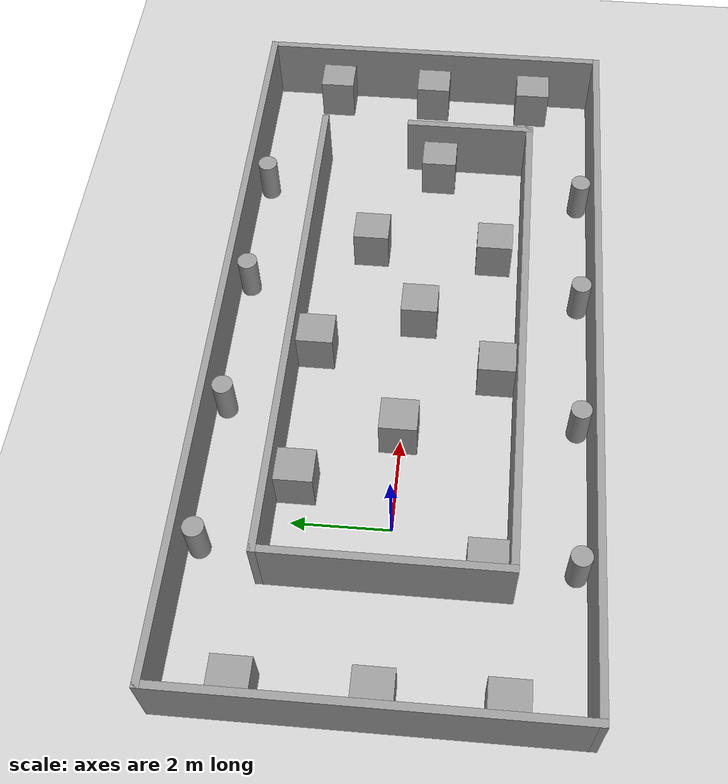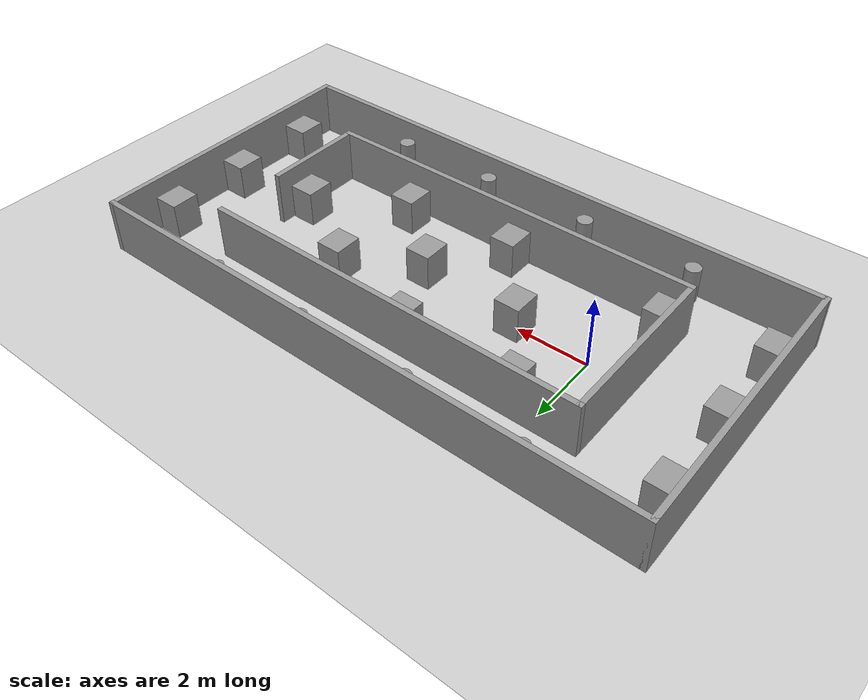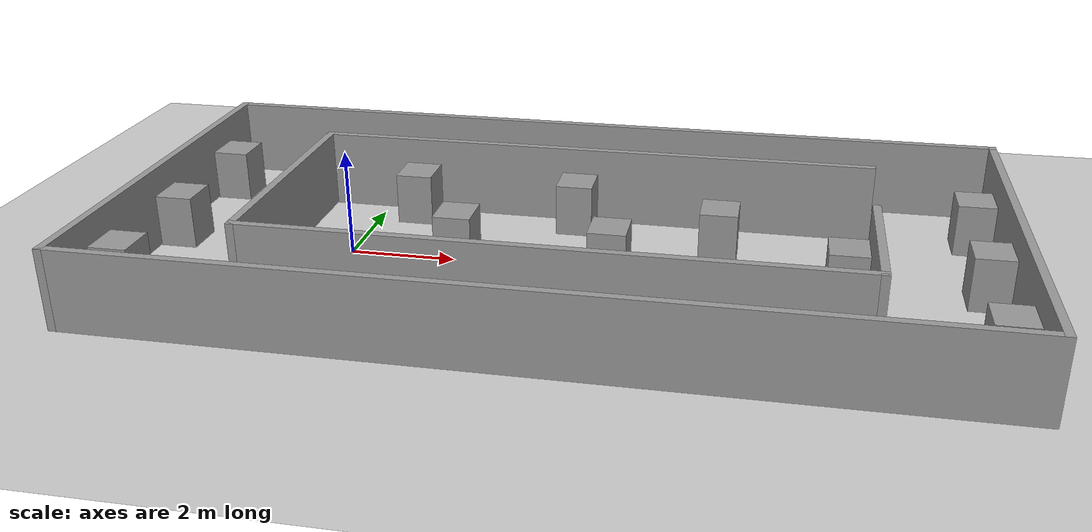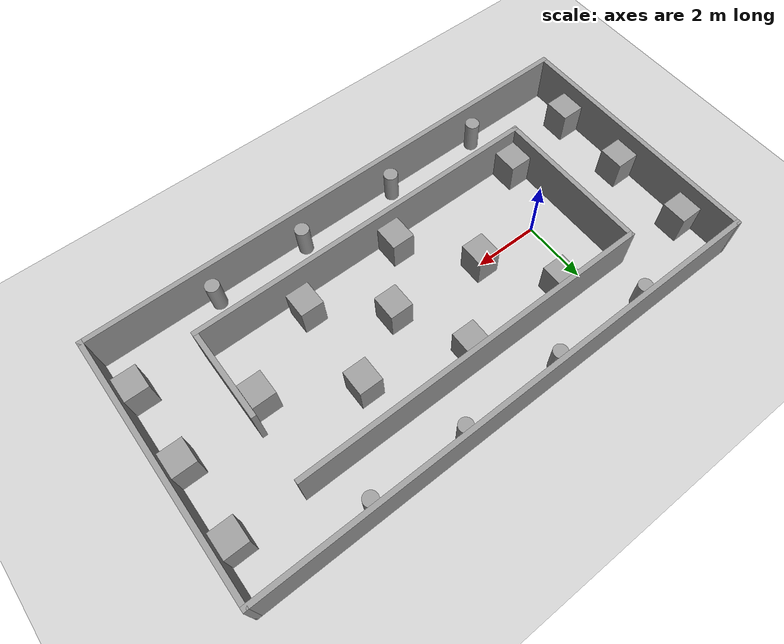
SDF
<sdf version="1.7">
 <world name="default">
  <light name="sun" type="directional">
   <pose>0 0 10 0 -0 0</pose>
   <diffuse>0.8 0.8 0.8 1</diffuse>
   <specular>0.2 0.2 0.2 1</specular>
   <attenuation>
    <range>1000</range>
    <constant>0.9</constant>
    <linear>0.01</linear>
    <quadratic>0.001</quadratic>
   </attenuation>
   <direction>-0.5 0.1 -0.9</direction>
   <spot><inner_angle>0</inner_angle><outer_angle>0</outer_angle><falloff>0</falloff></spot>
  </light>
  <model name="ground_plane">
   <static>1</static>
   <link name="link">
    <collision name="collision">
     <geometry><plane><normal>0 0 1</normal><size>100 100</size></plane></geometry>
     <surface><friction><ode><mu>100</mu><mu2>50</mu2></ode></friction></surface>
    </collision>
    <visual name="visual">
     <cast_shadows>0</cast_shadows>
     <geometry><plane><normal>0 0 1</normal><size>100 100</size></plane></geometry>
     <material>
      <script><uri>file://media/materials/scripts/gazebo.material</uri><name>Gazebo/Grey</name></script>
     </material>
    </visual>
   </link>
  </model>
  <gravity>0 0 -9.8</gravity>
  <magnetic_field>6e-06 2.3e-05 -4.2e-05</magnetic_field>
  <atmosphere type="adiabatic"/>
  <physics type="ode">
   <max_step_size>0.001</max_step_size>
   <real_time_factor>1</real_time_factor>
   <real_time_update_rate>1000</real_time_update_rate>
  </physics>
  <scene><ambient>0.4 0.4 0.4 1</ambient><background>0.7 0.7 0.7 1</background><shadows>1</shadows></scene>
  <spherical_coordinates>
   <surface_model>EARTH_WGS84</surface_model>
   <latitude_deg>0</latitude_deg>
   <longitude_deg>0</longitude_deg>
   <elevation>0</elevation>
   <heading_deg>0</heading_deg>
  </spherical_coordinates>
  <model name="smallsmall">
   <pose>4.103 0.036 0 0 -0 0</pose>
   <link name="Wall_0">
    <collision name="Wall_0_Collision">
     <geometry><box><size>16 0.15 1.5</size></box></geometry>
     <pose>0 0 0.75 0 -0 0</pose>
    </collision>
    <visual name="Wall_0_Visual">
     <pose>0 0 0.75 0 -0 0</pose>
     <geometry><box><size>16 0.15 1.5</size></box></geometry>
     <material>
      <script><uri>file://media/materials/scripts/gazebo.material</uri><name>Gazebo/Grey</name></script>
      <ambient>1 1 1 1</ambient>
     </material>
     <meta><layer>0</layer></meta>
    </visual>
    <pose>0 3.925 0 0 -0 0</pose>
   </link>
   <link name="Wall_1">
    <collision name="Wall_1_Collision">
     <geometry><box><size>8 0.15 1.5</size></box></geometry>
     <pose>0 0 0.75 0 -0 0</pose>
    </collision>
    <visual name="Wall_1_Visual">
     <pose>0 0 0.75 0 -0 0</pose>
     <geometry><box><size>8 0.15 1.5</size></box></geometry>
     <material>
      <script><uri>file://media/materials/scripts/gazebo.material</uri><name>Gazebo/Grey</name></script>
      <ambient>1 1 1 1</ambient>
     </material>
     <meta><layer>0</layer></meta>
    </visual>
    <pose>7.925 0 0 0 -0 -1.5708</pose>
   </link>
   <link name="Wall_2">
    <collision name="Wall_2_Collision">
     <geometry><box><size>16 0.15 1.5</size></box></geometry>
     <pose>0 0 0.75 0 -0 0</pose>
    </collision>
    <visual name="Wall_2_Visual">
     <pose>0 0 0.75 0 -0 0</pose>
     <geometry><box><size>16 0.15 1.5</size></box></geometry>
     <material>
      <script><uri>file://media/materials/scripts/gazebo.material</uri><name>Gazebo/Grey</name></script>
      <ambient>1 1 1 1</ambient>
     </material>
     <meta><layer>0</layer></meta>
    </visual>
    <pose>0 -3.925 0 0 -0 3.14159</pose>
   </link>
   <link name="Wall_3">
    <collision name="Wall_3_Collision">
     <geometry><box><size>8 0.15 1.5</size></box></geometry>
     <pose>0 0 0.75 0 -0 0</pose>
    </collision>
    <visual name="Wall_3_Visual">
     <pose>0 0 0.75 0 -0 0</pose>
     <geometry><box><size>8 0.15 1.5</size></box></geometry>
     <material>
      <script><uri>file://media/materials/scripts/gazebo.material</uri><name>Gazebo/Grey</name></script>
      <ambient>1 1 1 1</ambient>
     </material>
     <meta><layer>0</layer></meta>
    </visual>
    <pose>-7.925 0 0 0 -0 1.5708</pose>
   </link>
   <link name="Wall_5">
    <collision name="Wall_5_Collision">
     <geometry><box><size>11 0.15 1.5</size></box></geometry>
     <pose>0 0 0.75 0 -0 0</pose>
    </collision>
    <visual name="Wall_5_Visual">
     <pose>0 0 0.75 0 -0 0</pose>
     <geometry><box><size>11 0.15 1.5</size></box></geometry>
     <material>
      <script><uri>file://media/materials/scripts/gazebo.material</uri><name>Gazebo/Grey</name></script>
      <ambient>1 1 1 1</ambient>
     </material>
     <meta><layer>0</layer></meta>
    </visual>
    <pose>0.094 2.374 0 0 -0 3.14159</pose>
   </link>
   <link name="Wall_6">
    <collision name="Wall_6_Collision">
     <geometry><box><size>4.9 0.15 1.5</size></box></geometry>
     <pose>0 0 0.75 0 -0 0</pose>
    </collision>
    <visual name="Wall_6_Visual">
     <pose>0 0 0.75 0 -0 0</pose>
     <geometry><box><size>4.9 0.15 1.5</size></box></geometry>
     <material>
      <script><uri>file://media/materials/scripts/gazebo.material</uri><name>Gazebo/Grey</name></script>
      <ambient>1 1 1 1</ambient>
     </material>
     <meta><layer>0</layer></meta>
    </visual>
    <pose>-5.331 -0.001 0 0 -0 -1.5708</pose>
   </link>
   <link name="Wall_7">
    <collision name="Wall_7_Collision">
     <geometry><box><size>11 0.15 1.5</size></box></geometry>
     <pose>0 0 0.75 0 -0 0</pose>
    </collision>
    <visual name="Wall_7_Visual">
     <pose>0 0 0.75 0 -0 0</pose>
     <geometry><box><size>11 0.15 1.5</size></box></geometry>
     <material>
      <script><uri>file://media/materials/scripts/gazebo.material</uri><name>Gazebo/Grey</name></script>
      <ambient>1 1 1 1</ambient>
     </material>
     <meta><layer>0</layer></meta>
    </visual>
    <pose>0.094 -2.376 0 0 -0 0</pose>
   </link>
   <link name="Wall_8">
    <collision name="Wall_8_Collision">
     <geometry><box><size>2.9 0.15 1.5</size></box></geometry>
     <pose>0 0 0.75 0 -0 0</pose>
    </collision>
    <visual name="Wall_8_Visual">
     <pose>0 0 0.75 0 -0 0</pose>
     <geometry><box><size>2.9 0.15 1.5</size></box></geometry>
     <material>
      <script><uri>file://media/materials/scripts/gazebo.material</uri><name>Gazebo/Grey</name></script>
      <ambient>1 1 1 1</ambient>
     </material>
     <meta><layer>0</layer></meta>
    </visual>
    <pose>5.519 -1.001 0 0 -0 1.5708</pose>
   </link>
   <static>1</static>
  </model>
  <model name="unit_box">
   <pose>2.07166 0.030143 0.5 0 -0 0</pose>
   <link name="link">
    <inertial>
     <mass>1</mass>
     <inertia>
      <ixx>0.166667</ixx>
      <ixy>0</ixy>
      <ixz>0</ixz>
      <iyy>0.166667</iyy>
      <iyz>0</iyz>
      <izz>0.166667</izz>
     </inertia>
    </inertial>
    <collision name="collision"><geometry><box><size>0.705237 0.773876 1</size></box></geometry></collision>
    <visual name="visual">
     <geometry><box><size>0.705237 0.773876 1</size></box></geometry>
     <material>
      <script><name>Gazebo/Grey</name><uri>file://media/materials/scripts/gazebo.material</uri></script>
     </material>
    </visual>
   </link>
  </model>
  <model name="unit_box_clone">
   <pose>0.775424 1.94221 0.5 0 -0 0</pose>
   <link name="link">
    <inertial>
     <mass>1</mass>
     <inertia>
      <ixx>0.166667</ixx>
      <ixy>0</ixy>
      <ixz>0</ixz>
      <iyy>0.166667</iyy>
      <iyz>0</iyz>
      <izz>0.166667</izz>
     </inertia>
    </inertial>
    <collision name="collision"><geometry><box><size>0.705237 0.773876 1</size></box></geometry></collision>
    <visual name="visual">
     <geometry><box><size>0.705237 0.773876 1</size></box></geometry>
     <material>
      <script><name>Gazebo/Grey</name><uri>file://media/materials/scripts/gazebo.material</uri></script>
     </material>
    </visual>
   </link>
  </model>
  <model name="unit_box_clone_0">
   <pose>-0.808822 -1.87305 0.5 0 -0 0</pose>
   <link name="link">
    <inertial>
     <mass>1</mass>
     <inertia>
      <ixx>0.166667</ixx>
      <ixy>0</ixy>
      <ixz>0</ixz>
      <iyy>0.166667</iyy>
      <iyz>0</iyz>
      <izz>0.166667</izz>
     </inertia>
    </inertial>
    <collision name="collision"><geometry><box><size>0.705237 0.773876 1</size></box></geometry></collision>
    <visual name="visual">
     <geometry><box><size>0.705237 0.773876 1</size></box></geometry>
     <material>
      <script><name>Gazebo/Grey</name><uri>file://media/materials/scripts/gazebo.material</uri></script>
     </material>
    </visual>
   </link>
  </model>
  <model name="unit_box_clone_1">
   <pose>3.60782 -1.87209 0.5 0 -0 0</pose>
   <link name="link">
    <inertial>
     <mass>1</mass>
     <inertia>
      <ixx>0.166667</ixx>
      <ixy>0</ixy>
      <ixz>0</ixz>
      <iyy>0.166667</iyy>
      <iyz>0</iyz>
      <izz>0.166667</izz>
     </inertia>
    </inertial>
    <collision name="collision"><geometry><box><size>0.705237 0.773876 1</size></box></geometry></collision>
    <visual name="visual">
     <geometry><box><size>0.705237 0.773876 1</size></box></geometry>
     <material>
      <script><name>Gazebo/Grey</name><uri>file://media/materials/scripts/gazebo.material</uri></script>
     </material>
    </visual>
   </link>
  </model>
  <model name="unit_box_clone_2">
   <pose>4.00388 1.94633 0.5 0 -0 0</pose>
   <link name="link">
    <inertial>
     <mass>1</mass>
     <inertia>
      <ixx>0.166667</ixx>
      <ixy>0</ixy>
      <ixz>0</ixz>
      <iyy>0.166667</iyy>
      <iyz>0</iyz>
      <izz>0.166667</izz>
     </inertia>
    </inertial>
    <collision name="collision"><geometry><box><size>0.705237 0.773876 1</size></box></geometry></collision>
    <visual name="visual">
     <geometry><box><size>0.705237 0.773876 1</size></box></geometry>
     <material>
      <script><name>Gazebo/Grey</name><uri>file://media/materials/scripts/gazebo.material</uri></script>
     </material>
    </visual>
   </link>
  </model>
  <model name="unit_box_clone_3">
   <pose>4.97024 -0.165637 0.5 0 -0 0</pose>
   <link name="link">
    <inertial>
     <mass>1</mass>
     <inertia>
      <ixx>0.166667</ixx>
      <ixy>0</ixy>
      <ixz>0</ixz>
      <iyy>0.166667</iyy>
      <iyz>0</iyz>
      <izz>0.166667</izz>
     </inertia>
    </inertial>
    <collision name="collision"><geometry><box><size>0.705237 0.773876 1</size></box></geometry></collision>
    <visual name="visual">
     <geometry><box><size>0.705237 0.773876 1</size></box></geometry>
     <material>
      <script><name>Gazebo/Grey</name><uri>file://media/materials/scripts/gazebo.material</uri></script>
     </material>
    </visual>
   </link>
  </model>
  <model name="unit_box_clone_4">
   <pose>6.86657 1.05089 0.5 0 -0 0</pose>
   <link name="link">
    <inertial>
     <mass>1</mass>
     <inertia>
      <ixx>0.166667</ixx>
      <ixy>0</ixy>
      <ixz>0</ixz>
      <iyy>0.166667</iyy>
      <iyz>0</iyz>
      <izz>0.166667</izz>
     </inertia>
    </inertial>
    <collision name="collision"><geometry><box><size>0.705237 0.773876 1</size></box></geometry></collision>
    <visual name="visual">
     <geometry><box><size>0.705237 0.773876 1</size></box></geometry>
     <material>
      <script><name>Gazebo/Grey</name><uri>file://media/materials/scripts/gazebo.material</uri></script>
     </material>
    </visual>
   </link>
  </model>
  <model name="unit_box_clone_5">
   <pose>6.79609 -1.69257 0.5 0 -0 0</pose>
   <link name="link">
    <inertial>
     <mass>1</mass>
     <inertia>
      <ixx>0.166667</ixx>
      <ixy>0</ixy>
      <ixz>0</ixz>
      <iyy>0.166667</iyy>
      <iyz>0</iyz>
      <izz>0.166667</izz>
     </inertia>
    </inertial>
    <collision name="collision"><geometry><box><size>0.705237 0.773876 1</size></box></geometry></collision>
    <visual name="visual">
     <geometry><box><size>0.705237 0.773876 1</size></box></geometry>
     <material>
      <script><name>Gazebo/Grey</name><uri>file://media/materials/scripts/gazebo.material</uri></script>
     </material>
    </visual>
   </link>
  </model>
  <model name="unit_box_clone_6">
   <pose>9.17591 -0.305604 0.5 0 -0 0</pose>
   <link name="link">
    <inertial>
     <mass>1</mass>
     <inertia>
      <ixx>0.166667</ixx>
      <ixy>0</ixy>
      <ixz>0</ixz>
      <iyy>0.166667</iyy>
      <iyz>0</iyz>
      <izz>0.166667</izz>
     </inertia>
    </inertial>
    <collision name="collision"><geometry><box><size>0.705237 0.773876 1</size></box></geometry></collision>
    <visual name="visual">
     <geometry><box><size>0.705237 0.773876 1</size></box></geometry>
     <material>
      <script><name>Gazebo/Grey</name><uri>file://media/materials/scripts/gazebo.material</uri></script>
     </material>
    </visual>
   </link>
  </model>
  <model name="unit_box_clone_7">
   <pose>11.5982 -0.000473 0.5 0 -0 0</pose>
   <link name="link">
    <inertial>
     <mass>1</mass>
     <inertia>
      <ixx>0.166667</ixx>
      <ixy>0</ixy>
      <ixz>0</ixz>
      <iyy>0.166667</iyy>
      <iyz>0</iyz>
      <izz>0.166667</izz>
     </inertia>
    </inertial>
    <collision name="collision"><geometry><box><size>0.705237 0.773876 1</size></box></geometry></collision>
    <visual name="visual">
     <geometry><box><size>0.705237 0.773876 1</size></box></geometry>
     <material>
      <script><name>Gazebo/Grey</name><uri>file://media/materials/scripts/gazebo.material</uri></script>
     </material>
    </visual>
   </link>
  </model>
  <model name="unit_box_clone_8">
   <pose>11.5895 -2.41602 0.5 0 -0 0</pose>
   <link name="link">
    <inertial>
     <mass>1</mass>
     <inertia>
      <ixx>0.166667</ixx>
      <ixy>0</ixy>
      <ixz>0</ixz>
      <iyy>0.166667</iyy>
      <iyz>0</iyz>
      <izz>0.166667</izz>
     </inertia>
    </inertial>
    <collision name="collision"><geometry><box><size>0.705237 0.773876 1</size></box></geometry></collision>
    <visual name="visual">
     <geometry><box><size>0.705237 0.773876 1</size></box></geometry>
     <material>
      <script><name>Gazebo/Grey</name><uri>file://media/materials/scripts/gazebo.material</uri></script>
     </material>
    </visual>
   </link>
  </model>
  <model name="unit_box_clone_9">
   <pose>11.5861 2.34872 0.5 0 -0 0</pose>
   <link name="link">
    <inertial>
     <mass>1</mass>
     <inertia>
      <ixx>0.166667</ixx>
      <ixy>0</ixy>
      <ixz>0</ixz>
      <iyy>0.166667</iyy>
      <iyz>0</iyz>
      <izz>0.166667</izz>
     </inertia>
    </inertial>
    <collision name="collision"><geometry><box><size>0.705237 0.773876 1</size></box></geometry></collision>
    <visual name="visual">
     <geometry><box><size>0.705237 0.773876 1</size></box></geometry>
     <material>
      <script><name>Gazebo/Grey</name><uri>file://media/materials/scripts/gazebo.material</uri></script>
     </material>
    </visual>
   </link>
  </model>
  <model name="unit_box_clone_10">
   <pose>-3.37831 0.012768 0.5 0 -0 0</pose>
   <link name="link">
    <inertial>
     <mass>1</mass>
     <inertia>
      <ixx>0.166667</ixx>
      <ixy>0</ixy>
      <ixz>0</ixz>
      <iyy>0.166667</iyy>
      <iyz>0</iyz>
      <izz>0.166667</izz>
     </inertia>
    </inertial>
    <collision name="collision"><geometry><box><size>0.705237 0.773876 1</size></box></geometry></collision>
    <visual name="visual">
     <geometry><box><size>0.705237 0.773876 1</size></box></geometry>
     <material>
      <script><name>Gazebo/Grey</name><uri>file://media/materials/scripts/gazebo.material</uri></script>
     </material>
    </visual>
   </link>
  </model>
  <model name="unit_box_clone_11">
   <pose>-3.38454 2.52144 0.5 0 -0 0</pose>
   <link name="link">
    <inertial>
     <mass>1</mass>
     <inertia>
      <ixx>0.166667</ixx>
      <ixy>0</ixy>
      <ixz>0</ixz>
      <iyy>0.166667</iyy>
      <iyz>0</iyz>
      <izz>0.166667</izz>
     </inertia>
    </inertial>
    <collision name="collision"><geometry><box><size>0.705237 0.773876 1</size></box></geometry></collision>
    <visual name="visual">
     <geometry><box><size>0.705237 0.773876 1</size></box></geometry>
     <material>
      <script><name>Gazebo/Grey</name><uri>file://media/materials/scripts/gazebo.material</uri></script>
     </material>
    </visual>
   </link>
  </model>
  <model name="unit_box_clone_12">
   <pose>-3.38746 -2.35557 0.5 0 -0 0</pose>
   <link name="link">
    <inertial>
     <mass>1</mass>
     <inertia>
      <ixx>0.166667</ixx>
      <ixy>0</ixy>
      <ixz>0</ixz>
      <iyy>0.166667</iyy>
      <iyz>0</iyz>
      <izz>0.166667</izz>
     </inertia>
    </inertial>
    <collision name="collision"><geometry><box><size>0.705237 0.773876 1</size></box></geometry></collision>
    <visual name="visual">
     <geometry><box><size>0.705237 0.773876 1</size></box></geometry>
     <material>
      <script><name>Gazebo/Grey</name><uri>file://media/materials/scripts/gazebo.material</uri></script>
     </material>
    </visual>
   </link>
  </model>
  <model name="unit_cylinder">
   <pose>8.52773 -3.58393 0.5 0 -0 0</pose>
   <link name="link">
    <inertial>
     <mass>1</mass>
     <inertia><ixx>0.145833</ixx><ixy>0</ixy><ixz>0</ixz><iyy>0.145833</iyy><iyz>0</iyz><izz>0.125</izz></inertia>
    </inertial>
    <collision name="collision">
     <geometry><cylinder><radius>0.213494</radius><length>1</length></cylinder></geometry>
    </collision>
    <visual name="visual">
     <geometry><cylinder><radius>0.213494</radius><length>1</length></cylinder></geometry>
     <material>
      <script><name>Gazebo/Grey</name><uri>file://media/materials/scripts/gazebo.material</uri></script>
     </material>
    </visual>
   </link>
  </model>
  <model name="unit_cylinder_clone">
   <pose>5.61204 -3.59926 0.5 0 -0 0</pose>
   <link name="link">
    <inertial>
     <mass>1</mass>
     <inertia><ixx>0.145833</ixx><ixy>0</ixy><ixz>0</ixz><iyy>0.145833</iyy><iyz>0</iyz><izz>0.125</izz></inertia>
    </inertial>
    <collision name="collision">
     <geometry><cylinder><radius>0.213494</radius><length>1</length></cylinder></geometry>
    </collision>
    <visual name="visual">
     <geometry><cylinder><radius>0.213494</radius><length>1</length></cylinder></geometry>
     <material>
      <script><name>Gazebo/Grey</name><uri>file://media/materials/scripts/gazebo.material</uri></script>
     </material>
    </visual>
   </link>
  </model>
  <model name="unit_cylinder_clone_0">
   <pose>2.4759 -3.5968 0.5 0 -0 0</pose>
   <link name="link">
    <inertial>
     <mass>1</mass>
     <inertia><ixx>0.145833</ixx><ixy>0</ixy><ixz>0</ixz><iyy>0.145833</iyy><iyz>0</iyz><izz>0.125</izz></inertia>
    </inertial>
    <collision name="collision">
     <geometry><cylinder><radius>0.213494</radius><length>1</length></cylinder></geometry>
    </collision>
    <visual name="visual">
     <geometry><cylinder><radius>0.213494</radius><length>1</length></cylinder></geometry>
     <material>
      <script><name>Gazebo/Grey</name><uri>file://media/materials/scripts/gazebo.material</uri></script>
     </material>
    </visual>
   </link>
  </model>
  <model name="unit_cylinder_clone_1">
   <pose>-0.667161 -3.59638 0.5 0 -0 0</pose>
   <link name="link">
    <inertial>
     <mass>1</mass>
     <inertia><ixx>0.145833</ixx><ixy>0</ixy><ixz>0</ixz><iyy>0.145833</iyy><iyz>0</iyz><izz>0.125</izz></inertia>
    </inertial>
    <collision name="collision">
     <geometry><cylinder><radius>0.213494</radius><length>1</length></cylinder></geometry>
    </collision>
    <visual name="visual">
     <geometry><cylinder><radius>0.213494</radius><length>1</length></cylinder></geometry>
     <material>
      <script><name>Gazebo/Grey</name><uri>file://media/materials/scripts/gazebo.material</uri></script>
     </material>
    </visual>
   </link>
  </model>
  <model name="unit_cylinder_clone_2">
   <pose>-0.679825 3.65974 0.5 0 -0 0</pose>
   <link name="link">
    <inertial>
     <mass>1</mass>
     <inertia><ixx>0.145833</ixx><ixy>0</ixy><ixz>0</ixz><iyy>0.145833</iyy><iyz>0</iyz><izz>0.125</izz></inertia>
    </inertial>
    <collision name="collision">
     <geometry><cylinder><radius>0.213494</radius><length>1</length></cylinder></geometry>
    </collision>
    <visual name="visual">
     <geometry><cylinder><radius>0.213494</radius><length>1</length></cylinder></geometry>
     <material>
      <script><name>Gazebo/Grey</name><uri>file://media/materials/scripts/gazebo.material</uri></script>
     </material>
    </visual>
   </link>
  </model>
  <model name="unit_cylinder_clone_3">
   <pose>2.4635 3.65959 0.5 0 -0 0</pose>
   <link name="link">
    <inertial>
     <mass>1</mass>
     <inertia><ixx>0.145833</ixx><ixy>0</ixy><ixz>0</ixz><iyy>0.145833</iyy><iyz>0</iyz><izz>0.125</izz></inertia>
    </inertial>
    <collision name="collision">
     <geometry><cylinder><radius>0.213494</radius><length>1</length></cylinder></geometry>
    </collision>
    <visual name="visual">
     <geometry><cylinder><radius>0.213494</radius><length>1</length></cylinder></geometry>
     <material>
      <script><name>Gazebo/Grey</name><uri>file://media/materials/scripts/gazebo.material</uri></script>
     </material>
    </visual>
   </link>
  </model>
  <model name="unit_cylinder_clone_4">
   <pose>5.64618 3.66604 0.5 0 -0 0</pose>
   <link name="link">
    <inertial>
     <mass>1</mass>
     <inertia><ixx>0.145833</ixx><ixy>0</ixy><ixz>0</ixz><iyy>0.145833</iyy><iyz>0</iyz><izz>0.125</izz></inertia>
    </inertial>
    <collision name="collision">
     <geometry><cylinder><radius>0.213494</radius><length>1</length></cylinder></geometry>
    </collision>
    <visual name="visual">
     <geometry><cylinder><radius>0.213494</radius><length>1</length></cylinder></geometry>
     <material>
      <script><name>Gazebo/Grey</name><uri>file://media/materials/scripts/gazebo.material</uri></script>
     </material>
    </visual>
   </link>
  </model>
  <model name="unit_cylinder_clone_5">
   <pose>8.53468 3.65617 0.5 0 -0 0</pose>
   <link name="link">
    <inertial>
     <mass>1</mass>
     <inertia><ixx>0.145833</ixx><ixy>0</ixy><ixz>0</ixz><iyy>0.145833</iyy><iyz>0</iyz><izz>0.125</izz></inertia>
    </inertial>
    <collision name="collision">
     <geometry><cylinder><radius>0.213494</radius><length>1</length></cylinder></geometry>
    </collision>
    <visual name="visual">
     <geometry><cylinder><radius>0.213494</radius><length>1</length></cylinder></geometry>
     <material>
      <script><name>Gazebo/Grey</name><uri>file://media/materials/scripts/gazebo.material</uri></script>
     </material>
    </visual>
   </link>
  </model>
 </world>
</sdf>
